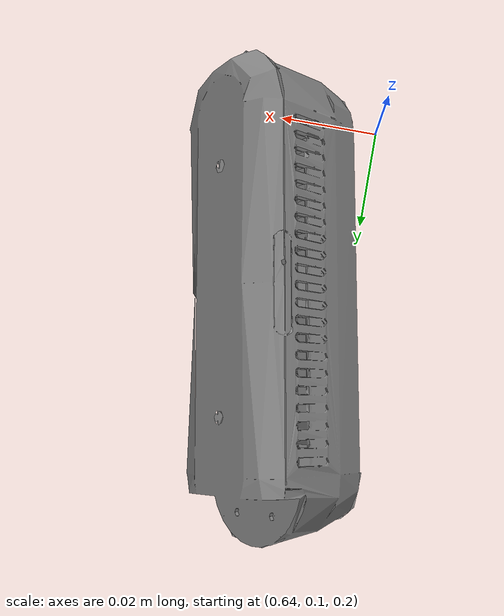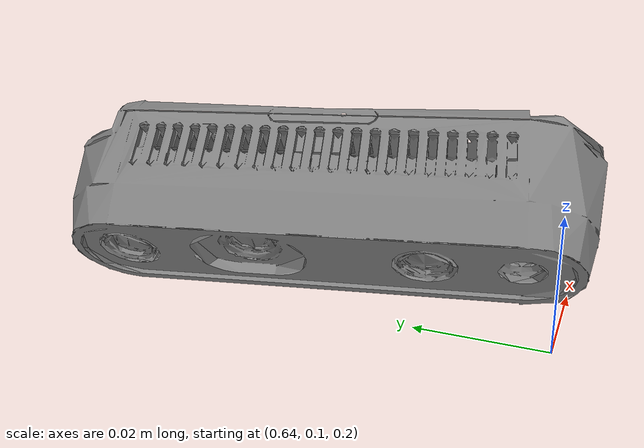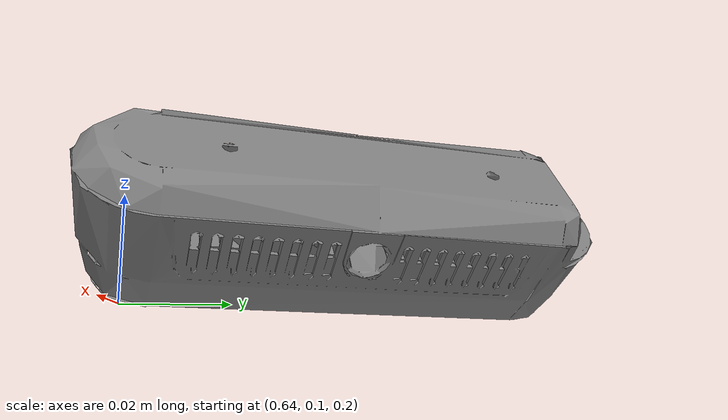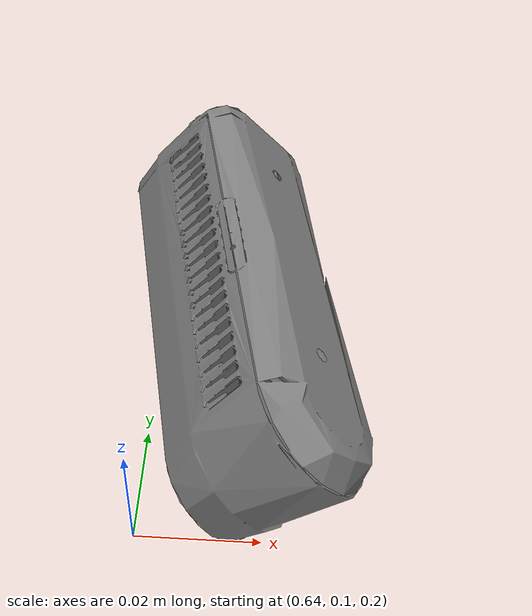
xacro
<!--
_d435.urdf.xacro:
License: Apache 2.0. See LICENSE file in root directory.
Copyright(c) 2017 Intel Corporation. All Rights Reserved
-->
<?xml version="1.0"?>
<robot xmlns:xacro="http://www.ros.org/wiki/xacro" name="realsense">
<xacro:arg name="x" default="0.664309"/>
<xacro:arg name="y" default="0.141670"/>
<xacro:arg name="z" default="0.205474"/>
<xacro:arg name="R" default="0.025043"/>
<xacro:arg name="P" default="0.711576"/>
<xacro:arg name="Y" default="-2.936789"/>

<link name="world" />

<!-- https://answers.ros.org/question/348331/realsense-d435-gazebo-plugin/ -->

<xacro:include filename="$(find realsense2_description)/urdf/_d435.urdf.xacro" />
<xacro:arg name="use_nominal_extrinsics" default="true"/>
<xacro:arg name="add_plug" default="false" />
<xacro:arg name="use_mesh" default="true" />
<xacro:sensor_d435 parent="world" use_nominal_extrinsics="$(arg use_nominal_extrinsics)" add_plug="$(arg add_plug)" use_mesh="$(arg use_mesh)">
  <origin xyz="$(arg x) $(arg y) $(arg z)" rpy="$(arg R) $(arg P) $(arg Y)"/>
</xacro:sensor_d435>
<!-- Realsense Gazebo Plugin -->
<xacro:include filename="$(find icclab_grasping_niryo)/urdf/_d435.gazebo.kinect.xacro"/>
<xacro:arg name="name" default="camera" />
<xacro:gazebo_d435 camera_name="$(arg name)"/>

</robot>

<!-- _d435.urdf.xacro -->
<robot name="sensor_d435" xmlns:xacro="http://ros.org/wiki/xacro">
  <!--File includes-->
  <xacro:include filename="$(find icclab_grasping_niryo)/urdf/_d435.gazebo.xacro"/>

  <xacro:macro name="sensor_d435" params="name:=camera topics_ns:=camera parent *origin">
    <xacro:property name="M_PI" value="3.1415926535897931" />

    <!-- The following values are approximate, and the camera node
     publishing TF values with actual calibrated camera extrinsic values -->
    <xacro:property name="d435_cam_depth_to_left_ir_offset" value="0.0"/>
    <xacro:property name="d435_cam_depth_to_right_ir_offset" value="-0.050"/>
    <xacro:property name="d435_cam_depth_to_color_offset" value="0.015"/>

    <!-- The following values model the aluminum peripherial case for the
  	D435 camera, with the camera joint represented by the actual
  	peripherial camera tripod mount -->
    <xacro:property name="d435_cam_width" value="0.090"/>
    <xacro:property name="d435_cam_height" value="0.025"/>
    <xacro:property name="d435_cam_depth" value="0.02505"/>
    <xacro:property name="d435_cam_mount_from_center_offset" value="0.0149"/>

    <!-- The following offset is relative the the physical D435 camera peripherial
  	camera tripod mount -->
    <xacro:property name="d435_cam_depth_px" value="${d435_cam_mount_from_center_offset}"/>
    <xacro:property name="d435_cam_depth_py" value="0.0175"/>
    <xacro:property name="d435_cam_depth_pz" value="${d435_cam_height/2}"/>
    <xacro:property name="path" value="/home/ros/catkin_ws/src/realsense/realsense2_description/meshes/" />

    <material name="${name}_aluminum">
	  <color rgba="0.5 0.5 0.5 1"/>
    </material>

    <!-- camera body, with origin at bottom screw mount -->
    <joint name="${name}_joint" type="fixed">
      <xacro:insert_block name="origin" />
      <parent link="${parent}"/>
      <child link="${name}_bottom_screw_frame" />
    </joint>
    <link name="${name}_bottom_screw_frame"/>

    <joint name="${name}_link_joint" type="fixed">
      <origin xyz="0 ${d435_cam_depth_py} ${d435_cam_depth_pz}" rpy="0 0 0"/>
      <parent link="${name}_bottom_screw_frame"/>
      <child link="${name}_link" />
    </joint>

    <link name="${name}_link">
      <visual>
      <origin xyz="${d435_cam_mount_from_center_offset} ${-d435_cam_depth_py} 0" rpy="${M_PI/2} 0 ${M_PI/2}"/>
        <geometry>
          <mesh filename="${path}/d435.dae" />
        </geometry>
        <material name="${name}_aluminum"/>
      </visual>
      <collision>
        <origin xyz="0 ${-d435_cam_depth_py} 0" rpy="0 0 0"/>
        <geometry>
        <box size="${d435_cam_depth} ${d435_cam_width} ${d435_cam_height}"/>
        </geometry>
      </collision>
      <inertial>
        <!-- The following are not reliable values, and should not be used for modeling -->
        <mass value="0.564" />
        <origin xyz="0 0 0" />
        <inertia ixx="0.003881243" ixy="0.0" ixz="0.0" iyy="0.000498940" iyz="0.0" izz="0.003879257" />
      </inertial>
    </link>

    <!-- camera depth joints and links -->
    <joint name="${name}_depth_joint" type="fixed">
      <origin xyz="0 0 0" rpy="0 0 0"/>
      <parent link="${name}_link"/>
      <child link="${name}_depth_frame" />
    </joint>
    <link name="${name}_depth_frame"/>

    <joint name="${name}_depth_optical_joint" type="fixed">
      <origin xyz="0 0 0" rpy="${-M_PI/2} 0 ${-M_PI/2}" />
      <parent link="${name}_depth_frame" />
      <child link="${name}_depth_optical_frame" />
    </joint>
    <link name="${name}_depth_optical_frame"/>

    <!-- camera left IR joints and links -->
    <joint name="${name}_left_ir_joint" type="fixed">
      <origin xyz="0 ${d435_cam_depth_to_left_ir_offset} 0" rpy="0 0 0" />
      <parent link="${name}_depth_frame" />
      <child link="${name}_left_ir_frame" />
    </joint>
    <link name="${name}_left_ir_frame"/>

    <joint name="${name}_left_ir_optical_joint" type="fixed">
      <origin xyz="0 0 0" rpy="${-M_PI/2} 0 ${-M_PI/2}" />
      <parent link="${name}_left_ir_frame" />
      <child link="${name}_left_ir_optical_frame" />
    </joint>
    <link name="${name}_left_ir_optical_frame"/>

    <!-- camera right IR joints and links -->
    <joint name="${name}_right_ir_joint" type="fixed">
      <origin xyz="0 ${d435_cam_depth_to_right_ir_offset} 0" rpy="0 0 0" />
      <parent link="${name}_depth_frame" />
      <child link="${name}_right_ir_frame" />
    </joint>
    <link name="${name}_right_ir_frame"/>

    <joint name="${name}_right_ir_optical_joint" type="fixed">
      <origin xyz="0 0 0" rpy="${-M_PI/2} 0 ${-M_PI/2}" />
      <parent link="${name}_right_ir_frame" />
      <child link="${name}_right_ir_optical_frame" />
    </joint>
    <link name="${name}_right_ir_optical_frame"/>

    <!-- camera color joints and links -->
    <joint name="${name}_color_joint" type="fixed">
      <origin xyz="0 ${d435_cam_depth_to_color_offset} 0" rpy="0 0 0" />
      <parent link="${name}_depth_frame" />
      <child link="${name}_color_frame" />
    </joint>
    <link name="${name}_color_frame"/>

    <joint name="${name}_color_optical_joint" type="fixed">
      <origin xyz="0 0 0" rpy="${-M_PI/2} 0 ${-M_PI/2}" />
      <parent link="${name}_color_frame" />
      <child link="${name}_color_optical_frame" />
    </joint>
    <link name="${name}_color_optical_frame"/>

    <!-- Realsense Gazebo Plugin -->
    <xacro:gazebo_d435 camera_name="${name}" reference_link="${name}_link" topics_ns="${topics_ns}" depth_optical_frame="${name}_depth_optical_frame" color_optical_frame="${name}_color_optical_frame" infrared1_optical_frame="${name}_left_ir_optical_frame" infrared2_optical_frame="${name}_right_ir_optical_frame"/>

  </xacro:macro>
</robot>
